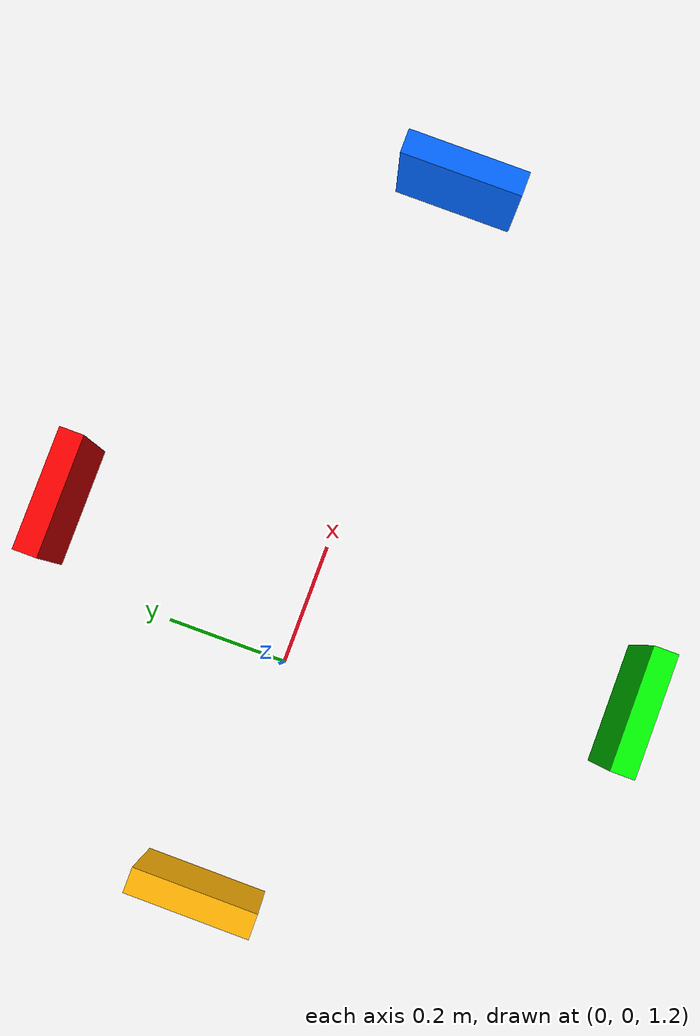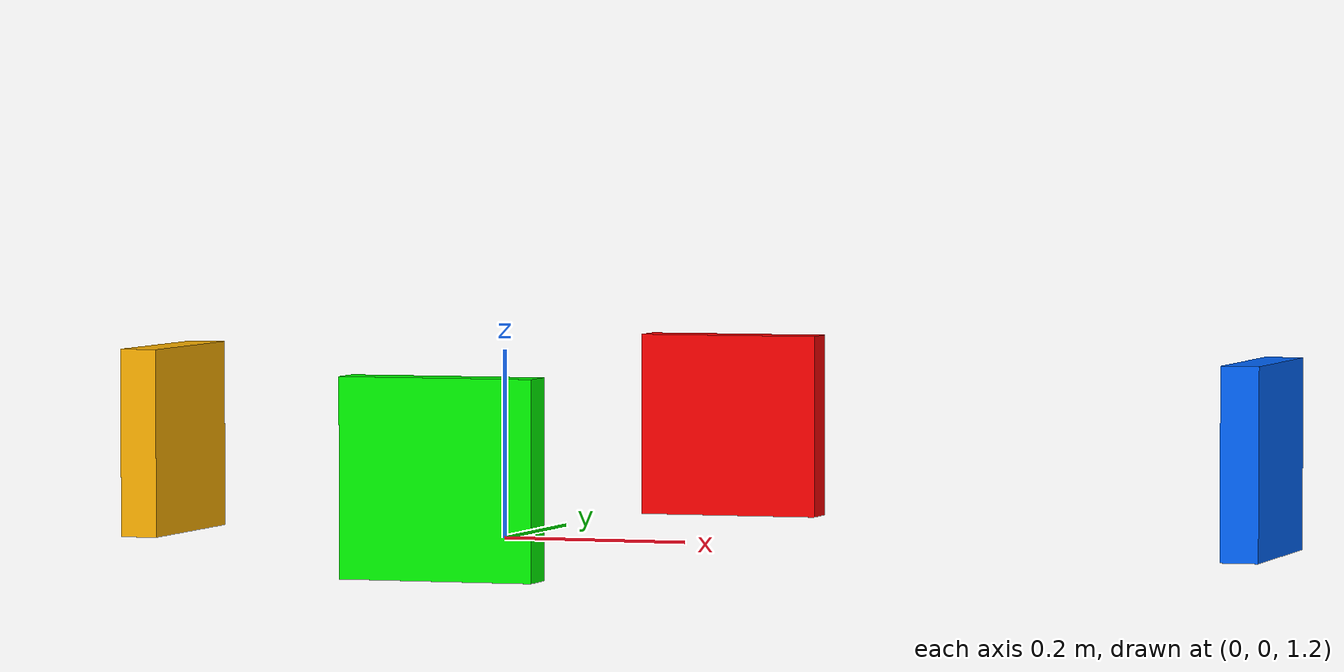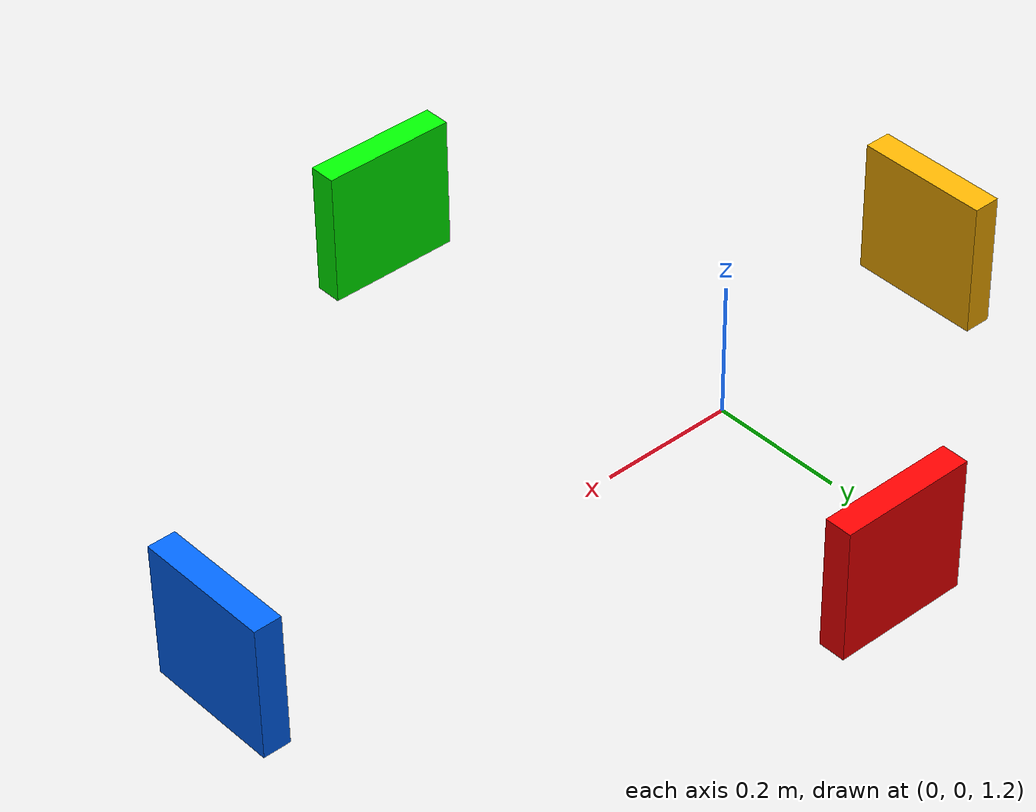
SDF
<?xml version="1.0"?>
<sdf version="1.9">
  <model name="vlp16_blindzone_targets">
    <static>true</static>
    <!-- Pose is the lidar scan origin; yaw aligns the model with velodyne_link. -->
    <pose>0.12179672 0 1.2994858 0 0 1.57079632679</pose>
    <link name="targets">
      <!-- Nearest faces are at 0.40, 0.48, 0.52 and 0.68 m. -->
      <collision name="target_040_collision">
        <pose>0.42 0 0 0 0 0</pose>
        <geometry><box><size>0.04 0.20 0.20</size></box></geometry>
      </collision>
      <visual name="target_040_visual">
        <pose>0.42 0 0 0 0 0</pose>
        <geometry><box><size>0.04 0.20 0.20</size></box></geometry>
        <material><ambient>1 0 0 1</ambient><diffuse>1 0 0 1</diffuse></material>
      </visual>
      <collision name="target_048_collision">
        <pose>0 0.50 0 0 0 0</pose>
        <geometry><box><size>0.20 0.04 0.20</size></box></geometry>
      </collision>
      <visual name="target_048_visual">
        <pose>0 0.50 0 0 0 0</pose>
        <geometry><box><size>0.20 0.04 0.20</size></box></geometry>
        <material><ambient>1 0.7 0 1</ambient><diffuse>1 0.7 0 1</diffuse></material>
      </visual>
      <collision name="target_052_collision">
        <pose>-0.54 0 0 0 0 0</pose>
        <geometry><box><size>0.04 0.20 0.20</size></box></geometry>
      </collision>
      <visual name="target_052_visual">
        <pose>-0.54 0 0 0 0 0</pose>
        <geometry><box><size>0.04 0.20 0.20</size></box></geometry>
        <material><ambient>0 1 0 1</ambient><diffuse>0 1 0 1</diffuse></material>
      </visual>
      <collision name="target_068_collision">
        <pose>0 -0.70 0 0 0 0</pose>
        <geometry><box><size>0.20 0.04 0.20</size></box></geometry>
      </collision>
      <visual name="target_068_visual">
        <pose>0 -0.70 0 0 0 0</pose>
        <geometry><box><size>0.20 0.04 0.20</size></box></geometry>
        <material><ambient>0 0.4 1 1</ambient><diffuse>0 0.4 1 1</diffuse></material>
      </visual>
    </link>
  </model>
</sdf>
